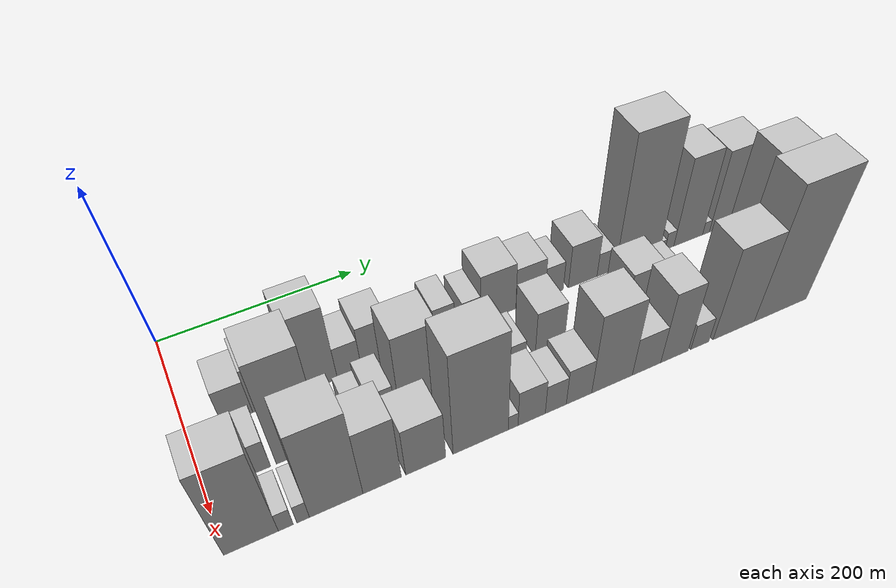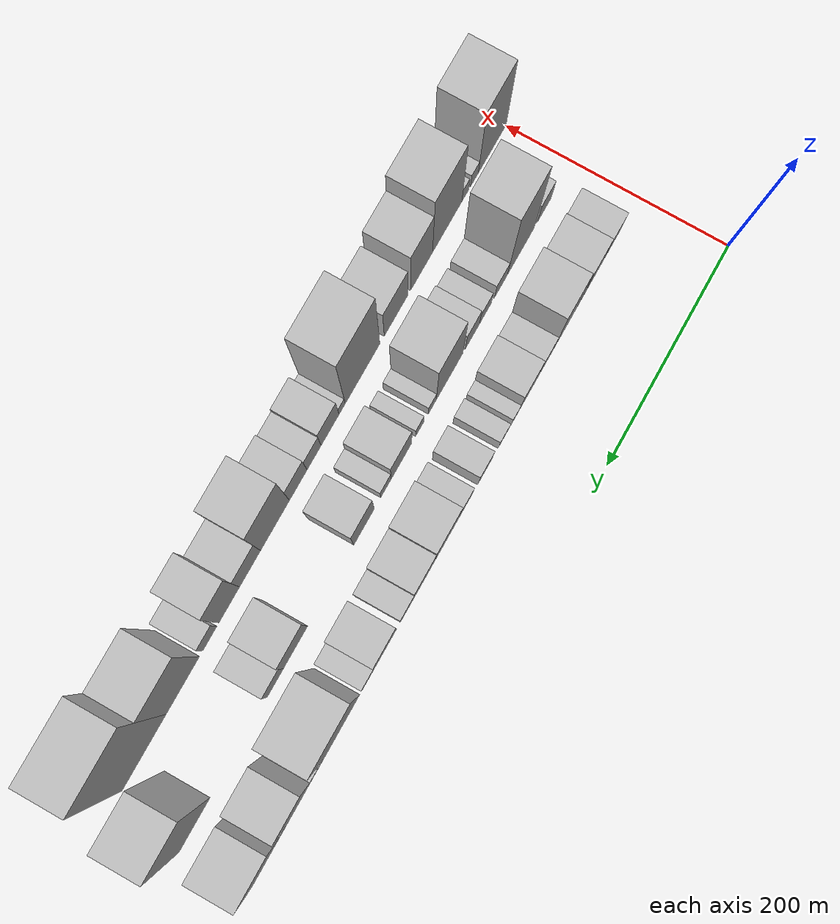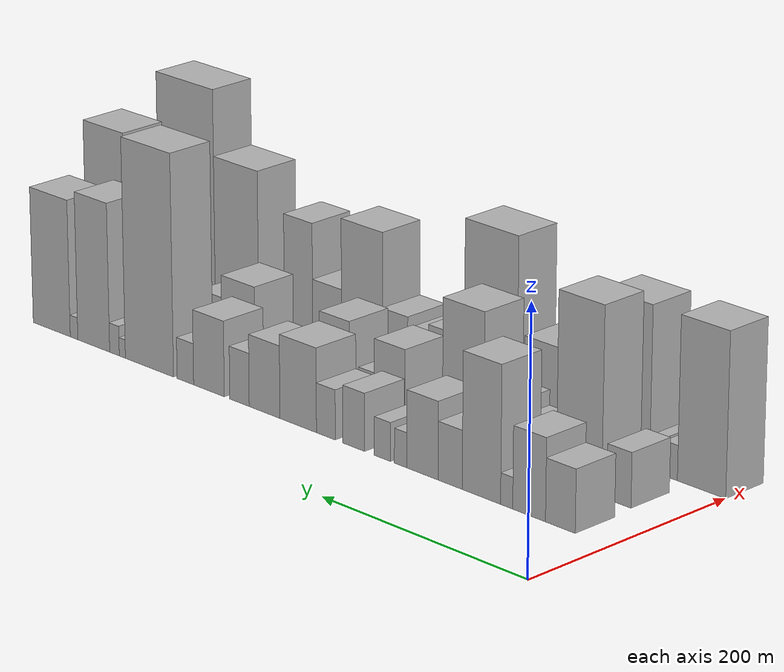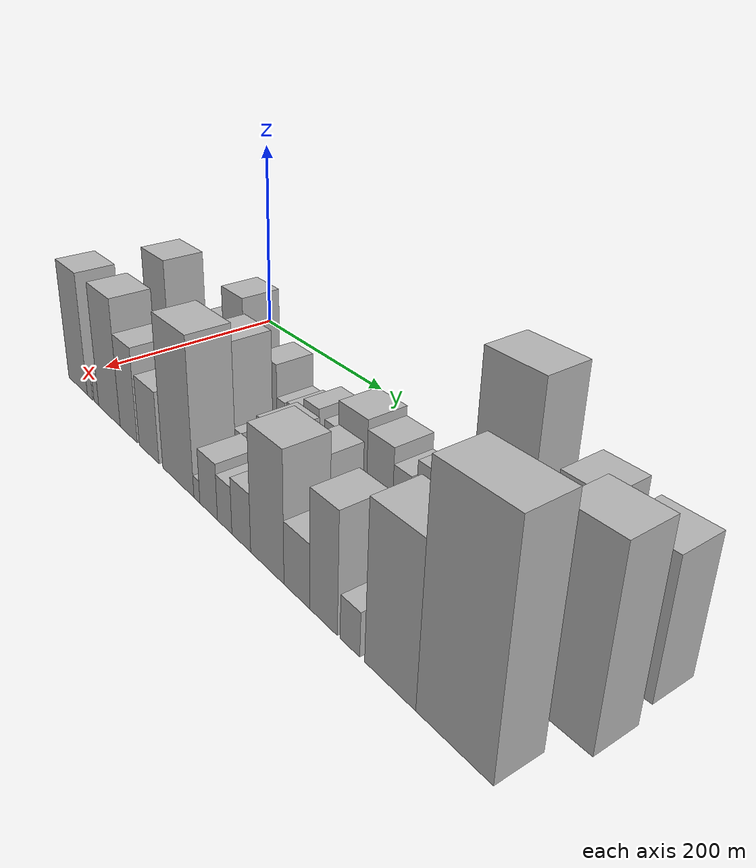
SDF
<sdf version="1.6">
 <world name="default">
  <model name="building_20">
   <static>1</static>
   <pose>100.0000 45.9311 0 0.000000 0.000000 0.000000</pose>
   <link name="link">
    <pose>0 0 24.00 0 0 0</pose>
    <collision name="collision"><geometry><box><size>40.0000 28.2582 48.0000</size></box></geometry></collision>
    <visual name="visual">
     <cast_shadows>0</cast_shadows>
     <geometry><box><size>40.0000 28.2582 48.0000</size></box></geometry>
     <material>
      <script>
       <uri>model://HANNAS_wall/materials/scripts</uri>
       <uri>model://HANNAS_wall/materials/textures</uri>
       <name>vrc/HANNAS_wall</name>
      </script>
     </material>
    </visual>
   </link>
  </model>
  <model name="building_21">
   <static>1</static>
   <pose>100.0000 75.8250 0 0.000000 0.000000 0.000000</pose>
   <link name="link">
    <pose>0 0 31.50 0 0 0</pose>
    <collision name="collision"><geometry><box><size>40.0000 31.5296 63.0000</size></box></geometry></collision>
    <visual name="visual">
     <cast_shadows>0</cast_shadows>
     <geometry><box><size>40.0000 31.5296 63.0000</size></box></geometry>
     <material>
      <script>
       <uri>model://HANNAS_wall/materials/scripts</uri>
       <uri>model://HANNAS_wall/materials/textures</uri>
       <name>vrc/HANNAS_wall</name>
      </script>
     </material>
    </visual>
   </link>
  </model>
  <model name="building_22">
   <static>1</static>
   <pose>100.0000 97.4669 0 0.000000 0.000000 0.000000</pose>
   <link name="link">
    <pose>0 0 12.00 0 0 0</pose>
    <collision name="collision"><geometry><box><size>40.0000 11.7541 24.0000</size></box></geometry></collision>
    <visual name="visual">
     <cast_shadows>0</cast_shadows>
     <geometry><box><size>40.0000 11.7541 24.0000</size></box></geometry>
     <material>
      <script>
       <uri>model://HANNAS_wall/materials/scripts</uri>
       <uri>model://HANNAS_wall/materials/textures</uri>
       <name>vrc/HANNAS_wall</name>
      </script>
     </material>
    </visual>
   </link>
  </model>
  <model name="building_23">
   <static>1</static>
   <pose>100.0000 122.1603 0 0.000000 0.000000 0.000000</pose>
   <link name="link">
    <pose>0 0 52.50 0 0 0</pose>
    <collision name="collision"><geometry><box><size>40.0000 37.6327 105.0000</size></box></geometry></collision>
    <visual name="visual">
     <cast_shadows>0</cast_shadows>
     <geometry><box><size>40.0000 37.6327 105.0000</size></box></geometry>
     <material>
      <script>
       <uri>model://HANNAS_wall/materials/scripts</uri>
       <uri>model://HANNAS_wall/materials/textures</uri>
       <name>vrc/HANNAS_wall</name>
      </script>
     </material>
    </visual>
   </link>
  </model>
  <model name="building_24">
   <static>1</static>
   <pose>100.0000 152.9874 0 0.000000 0.000000 0.000000</pose>
   <link name="link">
    <pose>0 0 22.50 0 0 0</pose>
    <collision name="collision"><geometry><box><size>40.0000 24.0217 45.0000</size></box></geometry></collision>
    <visual name="visual">
     <cast_shadows>0</cast_shadows>
     <geometry><box><size>40.0000 24.0217 45.0000</size></box></geometry>
     <material>
      <script>
       <uri>model://HANNAS_wall/materials/scripts</uri>
       <uri>model://HANNAS_wall/materials/textures</uri>
       <name>vrc/HANNAS_wall</name>
      </script>
     </material>
    </visual>
   </link>
  </model>
  <model name="building_25">
   <static>1</static>
   <pose>100.0000 180.6803 0 0.000000 0.000000 0.000000</pose>
   <link name="link">
    <pose>0 0 30.00 0 0 0</pose>
    <collision name="collision"><geometry><box><size>40.0000 31.3639 60.0000</size></box></geometry></collision>
    <visual name="visual">
     <cast_shadows>0</cast_shadows>
     <geometry><box><size>40.0000 31.3639 60.0000</size></box></geometry>
     <material>
      <script>
       <uri>model://HANNAS_wall/materials/scripts</uri>
       <uri>model://HANNAS_wall/materials/textures</uri>
       <name>vrc/HANNAS_wall</name>
      </script>
     </material>
    </visual>
   </link>
  </model>
  <model name="building_26">
   <static>1</static>
   <pose>100.0000 202.7305 0 0.000000 0.000000 0.000000</pose>
   <link name="link">
    <pose>0 0 13.50 0 0 0</pose>
    <collision name="collision"><geometry><box><size>40.0000 12.7365 27.0000</size></box></geometry></collision>
    <visual name="visual">
     <cast_shadows>0</cast_shadows>
     <geometry><box><size>40.0000 12.7365 27.0000</size></box></geometry>
     <material>
      <script>
       <uri>model://HANNAS_wall/materials/scripts</uri>
       <uri>model://HANNAS_wall/materials/textures</uri>
       <name>vrc/HANNAS_wall</name>
      </script>
     </material>
    </visual>
   </link>
  </model>
  <model name="building_27">
   <static>1</static>
   <pose>100.0000 221.3108 0 0.000000 0.000000 0.000000</pose>
   <link name="link">
    <pose>0 0 15.00 0 0 0</pose>
    <collision name="collision"><geometry><box><size>40.0000 16.4240 30.0000</size></box></geometry></collision>
    <visual name="visual">
     <cast_shadows>0</cast_shadows>
     <geometry><box><size>40.0000 16.4240 30.0000</size></box></geometry>
     <material>
      <script>
       <uri>model://HANNAS_wall/materials/scripts</uri>
       <uri>model://HANNAS_wall/materials/textures</uri>
       <name>vrc/HANNAS_wall</name>
      </script>
     </material>
    </visual>
   </link>
  </model>
  <model name="building_28">
   <static>1</static>
   <pose>100.0000 250.7945 0 0.000000 0.000000 0.000000</pose>
   <link name="link">
    <pose>0 0 22.50 0 0 0</pose>
    <collision name="collision"><geometry><box><size>40.0000 22.5436 45.0000</size></box></geometry></collision>
    <visual name="visual">
     <cast_shadows>0</cast_shadows>
     <geometry><box><size>40.0000 22.5436 45.0000</size></box></geometry>
     <material>
      <script>
       <uri>model://HANNAS_wall/materials/scripts</uri>
       <uri>model://HANNAS_wall/materials/textures</uri>
       <name>vrc/HANNAS_wall</name>
      </script>
     </material>
    </visual>
   </link>
  </model>
  <model name="building_29">
   <static>1</static>
   <pose>100.0000 279.9349 0 0.000000 0.000000 0.000000</pose>
   <link name="link">
    <pose>0 0 19.50 0 0 0</pose>
    <collision name="collision"><geometry><box><size>40.0000 19.7372 39.0000</size></box></geometry></collision>
    <visual name="visual">
     <cast_shadows>0</cast_shadows>
     <geometry><box><size>40.0000 19.7372 39.0000</size></box></geometry>
     <material>
      <script>
       <uri>model://HANNAS_wall/materials/scripts</uri>
       <uri>model://HANNAS_wall/materials/textures</uri>
       <name>vrc/HANNAS_wall</name>
      </script>
     </material>
    </visual>
   </link>
  </model>
  <model name="building_30">
   <static>1</static>
   <pose>100.0000 309.1752 0 0.000000 0.000000 0.000000</pose>
   <link name="link">
    <pose>0 0 33.00 0 0 0</pose>
    <collision name="collision"><geometry><box><size>40.0000 38.7434 66.0000</size></box></geometry></collision>
    <visual name="visual">
     <cast_shadows>0</cast_shadows>
     <geometry><box><size>40.0000 38.7434 66.0000</size></box></geometry>
     <material>
      <script>
       <uri>model://HANNAS_wall/materials/scripts</uri>
       <uri>model://HANNAS_wall/materials/textures</uri>
       <name>vrc/HANNAS_wall</name>
      </script>
     </material>
    </visual>
   </link>
  </model>
  <model name="building_31">
   <static>1</static>
   <pose>100.0000 345.0611 0 0.000000 0.000000 0.000000</pose>
   <link name="link">
    <pose>0 0 28.50 0 0 0</pose>
    <collision name="collision"><geometry><box><size>40.0000 33.0284 57.0000</size></box></geometry></collision>
    <visual name="visual">
     <cast_shadows>0</cast_shadows>
     <geometry><box><size>40.0000 33.0284 57.0000</size></box></geometry>
     <material>
      <script>
       <uri>model://HANNAS_wall/materials/scripts</uri>
       <uri>model://HANNAS_wall/materials/textures</uri>
       <name>vrc/HANNAS_wall</name>
      </script>
     </material>
    </visual>
   </link>
  </model>
  <model name="building_32">
   <static>1</static>
   <pose>100.0000 372.1604 0 0.000000 0.000000 0.000000</pose>
   <link name="link">
    <pose>0 0 21.00 0 0 0</pose>
    <collision name="collision"><geometry><box><size>40.0000 21.1702 42.0000</size></box></geometry></collision>
    <visual name="visual">
     <cast_shadows>0</cast_shadows>
     <geometry><box><size>40.0000 21.1702 42.0000</size></box></geometry>
     <material>
      <script>
       <uri>model://HANNAS_wall/materials/scripts</uri>
       <uri>model://HANNAS_wall/materials/textures</uri>
       <name>vrc/HANNAS_wall</name>
      </script>
     </material>
    </visual>
   </link>
  </model>
  <model name="building_33">
   <static>1</static>
   <pose>100.0000 405.6801 0 0.000000 0.000000 0.000000</pose>
   <link name="link">
    <pose>0 0 30.00 0 0 0</pose>
    <collision name="collision"><geometry><box><size>40.0000 33.8693 60.0000</size></box></geometry></collision>
    <visual name="visual">
     <cast_shadows>0</cast_shadows>
     <geometry><box><size>40.0000 33.8693 60.0000</size></box></geometry>
     <material>
      <script>
       <uri>model://HANNAS_wall/materials/scripts</uri>
       <uri>model://HANNAS_wall/materials/textures</uri>
       <name>vrc/HANNAS_wall</name>
      </script>
     </material>
    </visual>
   </link>
  </model>
  <model name="building_34">
   <static>1</static>
   <pose>100.0000 431.8306 0 0.000000 0.000000 0.000000</pose>
   <link name="link">
    <pose>0 0 16.50 0 0 0</pose>
    <collision name="collision"><geometry><box><size>40.0000 18.4317 33.0000</size></box></geometry></collision>
    <visual name="visual">
     <cast_shadows>0</cast_shadows>
     <geometry><box><size>40.0000 18.4317 33.0000</size></box></geometry>
     <material>
      <script>
       <uri>model://HANNAS_wall/materials/scripts</uri>
       <uri>model://HANNAS_wall/materials/textures</uri>
       <name>vrc/HANNAS_wall</name>
      </script>
     </material>
    </visual>
   </link>
  </model>
  <model name="building_35">
   <static>1</static>
   <pose>100.0000 472.3444 0 0.000000 0.000000 0.000000</pose>
   <link name="link">
    <pose>0 0 88.50 0 0 0</pose>
    <collision name="collision"><geometry><box><size>40.0000 54.5960 177.0000</size></box></geometry></collision>
    <visual name="visual">
     <cast_shadows>0</cast_shadows>
     <geometry><box><size>40.0000 54.5960 177.0000</size></box></geometry>
     <material>
      <script>
       <uri>model://HANNAS_wall/materials/scripts</uri>
       <uri>model://HANNAS_wall/materials/textures</uri>
       <name>vrc/HANNAS_wall</name>
      </script>
     </material>
    </visual>
   </link>
  </model>
  <model name="building_36">
   <static>1</static>
   <pose>100.0000 503.1276 0 0.000000 0.000000 0.000000</pose>
   <link name="link">
    <pose>0 0 7.50 0 0 0</pose>
    <collision name="collision"><geometry><box><size>40.0000 6.9704 15.0000</size></box></geometry></collision>
    <visual name="visual">
     <cast_shadows>0</cast_shadows>
     <geometry><box><size>40.0000 6.9704 15.0000</size></box></geometry>
     <material>
      <script>
       <uri>model://HANNAS_wall/materials/scripts</uri>
       <uri>model://HANNAS_wall/materials/textures</uri>
       <name>vrc/HANNAS_wall</name>
      </script>
     </material>
    </visual>
   </link>
  </model>
  <model name="building_37">
   <static>1</static>
   <pose>100.0000 512.1319 0 0.000000 0.000000 0.000000</pose>
   <link name="link">
    <pose>0 0 12.00 0 0 0</pose>
    <collision name="collision"><geometry><box><size>40.0000 11.0382 24.0000</size></box></geometry></collision>
    <visual name="visual">
     <cast_shadows>0</cast_shadows>
     <geometry><box><size>40.0000 11.0382 24.0000</size></box></geometry>
     <material>
      <script>
       <uri>model://HANNAS_wall/materials/scripts</uri>
       <uri>model://HANNAS_wall/materials/textures</uri>
       <name>vrc/HANNAS_wall</name>
      </script>
     </material>
    </visual>
   </link>
  </model>
  <model name="building_38">
   <static>1</static>
   <pose>100.0000 536.1729 0 0.000000 0.000000 0.000000</pose>
   <link name="link">
    <pose>0 0 60.00 0 0 0</pose>
    <collision name="collision"><geometry><box><size>40.0000 37.0437 120.0000</size></box></geometry></collision>
    <visual name="visual">
     <cast_shadows>0</cast_shadows>
     <geometry><box><size>40.0000 37.0437 120.0000</size></box></geometry>
     <material>
      <script>
       <uri>model://HANNAS_wall/materials/scripts</uri>
       <uri>model://HANNAS_wall/materials/textures</uri>
       <name>vrc/HANNAS_wall</name>
      </script>
     </material>
    </visual>
   </link>
  </model>
  <model name="building_39">
   <static>1</static>
   <pose>100.0000 559.1173 0 0.000000 0.000000 0.000000</pose>
   <link name="link">
    <pose>0 0 9.00 0 0 0</pose>
    <collision name="collision"><geometry><box><size>40.0000 8.8453 18.0000</size></box></geometry></collision>
    <visual name="visual">
     <cast_shadows>0</cast_shadows>
     <geometry><box><size>40.0000 8.8453 18.0000</size></box></geometry>
     <material>
      <script>
       <uri>model://HANNAS_wall/materials/scripts</uri>
       <uri>model://HANNAS_wall/materials/textures</uri>
       <name>vrc/HANNAS_wall</name>
      </script>
     </material>
    </visual>
   </link>
  </model>
  <model name="building_40">
   <static>1</static>
   <pose>100.0000 585.4034 0 0.000000 0.000000 0.000000</pose>
   <link name="link">
    <pose>0 0 55.50 0 0 0</pose>
    <collision name="collision"><geometry><box><size>40.0000 43.7269 111.0000</size></box></geometry></collision>
    <visual name="visual">
     <cast_shadows>0</cast_shadows>
     <geometry><box><size>40.0000 43.7269 111.0000</size></box></geometry>
     <material>
      <script>
       <uri>model://HANNAS_wall/materials/scripts</uri>
       <uri>model://HANNAS_wall/materials/textures</uri>
       <name>vrc/HANNAS_wall</name>
      </script>
     </material>
    </visual>
   </link>
  </model>
  <model name="building_58">
   <static>1</static>
   <pose>160.0000 46.2465 0 0.000000 0.000000 0.000000</pose>
   <link name="link">
    <pose>0 0 21.00 0 0 0</pose>
    <collision name="collision"><geometry><box><size>40.0000 22.9643 42.0000</size></box></geometry></collision>
    <visual name="visual">
     <cast_shadows>0</cast_shadows>
     <geometry><box><size>40.0000 22.9643 42.0000</size></box></geometry>
     <material>
      <script>
       <uri>model://HANNAS_wall/materials/scripts</uri>
       <uri>model://HANNAS_wall/materials/textures</uri>
       <name>vrc/HANNAS_wall</name>
      </script>
     </material>
    </visual>
   </link>
  </model>
  <model name="building_59">
   <static>1</static>
   <pose>160.0000 84.6311 0 0.000000 0.000000 0.000000</pose>
   <link name="link">
    <pose>0 0 72.00 0 0 0</pose>
    <collision name="collision"><geometry><box><size>40.0000 43.8050 144.0000</size></box></geometry></collision>
    <visual name="visual">
     <cast_shadows>0</cast_shadows>
     <geometry><box><size>40.0000 43.8050 144.0000</size></box></geometry>
     <material>
      <script>
       <uri>model://HANNAS_wall/materials/scripts</uri>
       <uri>model://HANNAS_wall/materials/textures</uri>
       <name>vrc/HANNAS_wall</name>
      </script>
     </material>
    </visual>
   </link>
  </model>
  <model name="building_60">
   <static>1</static>
   <pose>160.0000 116.9627 0 0.000000 0.000000 0.000000</pose>
   <link name="link">
    <pose>0 0 18.00 0 0 0</pose>
    <collision name="collision"><geometry><box><size>40.0000 20.8580 36.0000</size></box></geometry></collision>
    <visual name="visual">
     <cast_shadows>0</cast_shadows>
     <geometry><box><size>40.0000 20.8580 36.0000</size></box></geometry>
     <material>
      <script>
       <uri>model://HANNAS_wall/materials/scripts</uri>
       <uri>model://HANNAS_wall/materials/textures</uri>
       <name>vrc/HANNAS_wall</name>
      </script>
     </material>
    </visual>
   </link>
  </model>
  <model name="building_61">
   <static>1</static>
   <pose>160.0000 141.9194 0 0.000000 0.000000 0.000000</pose>
   <link name="link">
    <pose>0 0 16.50 0 0 0</pose>
    <collision name="collision"><geometry><box><size>40.0000 19.0554 33.0000</size></box></geometry></collision>
    <visual name="visual">
     <cast_shadows>0</cast_shadows>
     <geometry><box><size>40.0000 19.0554 33.0000</size></box></geometry>
     <material>
      <script>
       <uri>model://HANNAS_wall/materials/scripts</uri>
       <uri>model://HANNAS_wall/materials/textures</uri>
       <name>vrc/HANNAS_wall</name>
      </script>
     </material>
    </visual>
   </link>
  </model>
  <model name="building_62">
   <static>1</static>
   <pose>160.0000 162.7937 0 0.000000 0.000000 0.000000</pose>
   <link name="link">
    <pose>0 0 22.50 0 0 0</pose>
    <collision name="collision"><geometry><box><size>40.0000 22.6934 45.0000</size></box></geometry></collision>
    <visual name="visual">
     <cast_shadows>0</cast_shadows>
     <geometry><box><size>40.0000 22.6934 45.0000</size></box></geometry>
     <material>
      <script>
       <uri>model://HANNAS_wall/materials/scripts</uri>
       <uri>model://HANNAS_wall/materials/textures</uri>
       <name>vrc/HANNAS_wall</name>
      </script>
     </material>
    </visual>
   </link>
  </model>
  <model name="building_63">
   <static>1</static>
   <pose>160.0000 199.1652 0 0.000000 0.000000 0.000000</pose>
   <link name="link">
    <pose>0 0 54.00 0 0 0</pose>
    <collision name="collision"><geometry><box><size>40.0000 42.0496 108.0000</size></box></geometry></collision>
    <visual name="visual">
     <cast_shadows>0</cast_shadows>
     <geometry><box><size>40.0000 42.0496 108.0000</size></box></geometry>
     <material>
      <script>
       <uri>model://HANNAS_wall/materials/scripts</uri>
       <uri>model://HANNAS_wall/materials/textures</uri>
       <name>vrc/HANNAS_wall</name>
      </script>
     </material>
    </visual>
   </link>
  </model>
  <model name="building_64">
   <static>1</static>
   <pose>160.0000 226.4429 0 0.000000 0.000000 0.000000</pose>
   <link name="link">
    <pose>0 0 13.50 0 0 0</pose>
    <collision name="collision"><geometry><box><size>40.0000 12.5059 27.0000</size></box></geometry></collision>
    <visual name="visual">
     <cast_shadows>0</cast_shadows>
     <geometry><box><size>40.0000 12.5059 27.0000</size></box></geometry>
     <material>
      <script>
       <uri>model://HANNAS_wall/materials/scripts</uri>
       <uri>model://HANNAS_wall/materials/textures</uri>
       <name>vrc/HANNAS_wall</name>
      </script>
     </material>
    </visual>
   </link>
  </model>
  <model name="building_65">
   <static>1</static>
   <pose>160.0000 246.2078 0 0.000000 0.000000 0.000000</pose>
   <link name="link">
    <pose>0 0 13.50 0 0 0</pose>
    <collision name="collision"><geometry><box><size>40.0000 13.0239 27.0000</size></box></geometry></collision>
    <visual name="visual">
     <cast_shadows>0</cast_shadows>
     <geometry><box><size>40.0000 13.0239 27.0000</size></box></geometry>
     <material>
      <script>
       <uri>model://HANNAS_wall/materials/scripts</uri>
       <uri>model://HANNAS_wall/materials/textures</uri>
       <name>vrc/HANNAS_wall</name>
      </script>
     </material>
    </visual>
   </link>
  </model>
  <model name="building_66">
   <static>1</static>
   <pose>160.0000 274.7324 0 0.000000 0.000000 0.000000</pose>
   <link name="link">
    <pose>0 0 28.50 0 0 0</pose>
    <collision name="collision"><geometry><box><size>40.0000 32.0252 57.0000</size></box></geometry></collision>
    <visual name="visual">
     <cast_shadows>0</cast_shadows>
     <geometry><box><size>40.0000 32.0252 57.0000</size></box></geometry>
     <material>
      <script>
       <uri>model://HANNAS_wall/materials/scripts</uri>
       <uri>model://HANNAS_wall/materials/textures</uri>
       <name>vrc/HANNAS_wall</name>
      </script>
     </material>
    </visual>
   </link>
  </model>
  <model name="building_67">
   <static>1</static>
   <pose>160.0000 299.0501 0 0.000000 0.000000 0.000000</pose>
   <link name="link">
    <pose>0 0 15.00 0 0 0</pose>
    <collision name="collision"><geometry><box><size>40.0000 16.6102 30.0000</size></box></geometry></collision>
    <visual name="visual">
     <cast_shadows>0</cast_shadows>
     <geometry><box><size>40.0000 16.6102 30.0000</size></box></geometry>
     <material>
      <script>
       <uri>model://HANNAS_wall/materials/scripts</uri>
       <uri>model://HANNAS_wall/materials/textures</uri>
       <name>vrc/HANNAS_wall</name>
      </script>
     </material>
    </visual>
   </link>
  </model>
  <model name="building_68">
   <static>1</static>
   <pose>160.0000 333.2027 0 0.000000 0.000000 0.000000</pose>
   <link name="link">
    <pose>0 0 31.50 0 0 0</pose>
    <collision name="collision"><geometry><box><size>40.0000 31.6950 63.0000</size></box></geometry></collision>
    <visual name="visual">
     <cast_shadows>0</cast_shadows>
     <geometry><box><size>40.0000 31.6950 63.0000</size></box></geometry>
     <material>
      <script>
       <uri>model://HANNAS_wall/materials/scripts</uri>
       <uri>model://HANNAS_wall/materials/textures</uri>
       <name>vrc/HANNAS_wall</name>
      </script>
     </material>
    </visual>
   </link>
  </model>
  <model name="building_69">
   <static>1</static>
   <pose>160.0000 438.1638 0 0.000000 0.000000 0.000000</pose>
   <link name="link">
    <pose>0 0 31.50 0 0 0</pose>
    <collision name="collision"><geometry><box><size>40.0000 36.7424 63.0000</size></box></geometry></collision>
    <visual name="visual">
     <cast_shadows>0</cast_shadows>
     <geometry><box><size>40.0000 36.7424 63.0000</size></box></geometry>
     <material>
      <script>
       <uri>model://HANNAS_wall/materials/scripts</uri>
       <uri>model://HANNAS_wall/materials/textures</uri>
       <name>vrc/HANNAS_wall</name>
      </script>
     </material>
    </visual>
   </link>
  </model>
  <model name="building_70">
   <static>1</static>
   <pose>160.0000 468.7781 0 0.000000 0.000000 0.000000</pose>
   <link name="link">
    <pose>0 0 22.50 0 0 0</pose>
    <collision name="collision"><geometry><box><size>40.0000 24.4863 45.0000</size></box></geometry></collision>
    <visual name="visual">
     <cast_shadows>0</cast_shadows>
     <geometry><box><size>40.0000 24.4863 45.0000</size></box></geometry>
     <material>
      <script>
       <uri>model://HANNAS_wall/materials/scripts</uri>
       <uri>model://HANNAS_wall/materials/textures</uri>
       <name>vrc/HANNAS_wall</name>
      </script>
     </material>
    </visual>
   </link>
  </model>
  <model name="building_71">
   <static>1</static>
   <pose>160.0000 589.4472 0 0.000000 0.000000 0.000000</pose>
   <link name="link">
    <pose>0 0 75.00 0 0 0</pose>
    <collision name="collision"><geometry><box><size>40.0000 46.2839 150.0000</size></box></geometry></collision>
    <visual name="visual">
     <cast_shadows>0</cast_shadows>
     <geometry><box><size>40.0000 46.2839 150.0000</size></box></geometry>
     <material>
      <script>
       <uri>model://HANNAS_wall/materials/scripts</uri>
       <uri>model://HANNAS_wall/materials/textures</uri>
       <name>vrc/HANNAS_wall</name>
      </script>
     </material>
    </visual>
   </link>
  </model>
  <model name="building_88">
   <static>1</static>
   <pose>220.0000 22.4431 0 0.000000 0.000000 0.000000</pose>
   <link name="link">
    <pose>0 0 63.00 0 0 0</pose>
    <collision name="collision"><geometry><box><size>40.0000 45.5857 126.0000</size></box></geometry></collision>
    <visual name="visual">
     <cast_shadows>0</cast_shadows>
     <geometry><box><size>40.0000 45.5857 126.0000</size></box></geometry>
     <material>
      <script>
       <uri>model://HANNAS_wall/materials/scripts</uri>
       <uri>model://HANNAS_wall/materials/textures</uri>
       <name>vrc/HANNAS_wall</name>
      </script>
     </material>
    </visual>
   </link>
  </model>
  <model name="building_89">
   <static>1</static>
   <pose>220.0000 51.6182 0 0.000000 0.000000 0.000000</pose>
   <link name="link">
    <pose>0 0 13.50 0 0 0</pose>
    <collision name="collision"><geometry><box><size>40.0000 12.7645 27.0000</size></box></geometry></collision>
    <visual name="visual">
     <cast_shadows>0</cast_shadows>
     <geometry><box><size>40.0000 12.7645 27.0000</size></box></geometry>
     <material>
      <script>
       <uri>model://HANNAS_wall/materials/scripts</uri>
       <uri>model://HANNAS_wall/materials/textures</uri>
       <name>vrc/HANNAS_wall</name>
      </script>
     </material>
    </visual>
   </link>
  </model>
  <model name="building_90">
   <static>1</static>
   <pose>220.0000 66.4389 0 0.000000 0.000000 0.000000</pose>
   <link name="link">
    <pose>0 0 13.50 0 0 0</pose>
    <collision name="collision"><geometry><box><size>40.0000 10.8768 27.0000</size></box></geometry></collision>
    <visual name="visual">
     <cast_shadows>0</cast_shadows>
     <geometry><box><size>40.0000 10.8768 27.0000</size></box></geometry>
     <material>
      <script>
       <uri>model://HANNAS_wall/materials/scripts</uri>
       <uri>model://HANNAS_wall/materials/textures</uri>
       <name>vrc/HANNAS_wall</name>
      </script>
     </material>
    </visual>
   </link>
  </model>
  <model name="building_91">
   <static>1</static>
   <pose>220.0000 95.5271 0 0.000000 0.000000 0.000000</pose>
   <link name="link">
    <pose>0 0 63.00 0 0 0</pose>
    <collision name="collision"><geometry><box><size>40.0000 47.2995 126.0000</size></box></geometry></collision>
    <visual name="visual">
     <cast_shadows>0</cast_shadows>
     <geometry><box><size>40.0000 47.2995 126.0000</size></box></geometry>
     <material>
      <script>
       <uri>model://HANNAS_wall/materials/scripts</uri>
       <uri>model://HANNAS_wall/materials/textures</uri>
       <name>vrc/HANNAS_wall</name>
      </script>
     </material>
    </visual>
   </link>
  </model>
  <model name="building_92">
   <static>1</static>
   <pose>220.0000 136.6772 0 0.000000 0.000000 0.000000</pose>
   <link name="link">
    <pose>0 0 46.50 0 0 0</pose>
    <collision name="collision"><geometry><box><size>40.0000 35.0007 93.0000</size></box></geometry></collision>
    <visual name="visual">
     <cast_shadows>0</cast_shadows>
     <geometry><box><size>40.0000 35.0007 93.0000</size></box></geometry>
     <material>
      <script>
       <uri>model://HANNAS_wall/materials/scripts</uri>
       <uri>model://HANNAS_wall/materials/textures</uri>
       <name>vrc/HANNAS_wall</name>
      </script>
     </material>
    </visual>
   </link>
  </model>
  <model name="building_93">
   <static>1</static>
   <pose>220.0000 177.0465 0 0.000000 0.000000 0.000000</pose>
   <link name="link">
    <pose>0 0 34.50 0 0 0</pose>
    <collision name="collision"><geometry><box><size>40.0000 37.7380 69.0000</size></box></geometry></collision>
    <visual name="visual">
     <cast_shadows>0</cast_shadows>
     <geometry><box><size>40.0000 37.7380 69.0000</size></box></geometry>
     <material>
      <script>
       <uri>model://HANNAS_wall/materials/scripts</uri>
       <uri>model://HANNAS_wall/materials/textures</uri>
       <name>vrc/HANNAS_wall</name>
      </script>
     </material>
    </visual>
   </link>
  </model>
  <model name="building_94">
   <static>1</static>
   <pose>220.0000 230.0142 0 0.000000 0.000000 0.000000</pose>
   <link name="link">
    <pose>0 0 72.00 0 0 0</pose>
    <collision name="collision"><geometry><box><size>40.0000 54.1974 144.0000</size></box></geometry></collision>
    <visual name="visual">
     <cast_shadows>0</cast_shadows>
     <geometry><box><size>40.0000 54.1974 144.0000</size></box></geometry>
     <material>
      <script>
       <uri>model://HANNAS_wall/materials/scripts</uri>
       <uri>model://HANNAS_wall/materials/textures</uri>
       <name>vrc/HANNAS_wall</name>
      </script>
     </material>
    </visual>
   </link>
  </model>
  <model name="building_95">
   <static>1</static>
   <pose>220.0000 262.0165 0 0.000000 0.000000 0.000000</pose>
   <link name="link">
    <pose>0 0 10.50 0 0 0</pose>
    <collision name="collision"><geometry><box><size>40.0000 9.8073 21.0000</size></box></geometry></collision>
    <visual name="visual">
     <cast_shadows>0</cast_shadows>
     <geometry><box><size>40.0000 9.8073 21.0000</size></box></geometry>
     <material>
      <script>
       <uri>model://HANNAS_wall/materials/scripts</uri>
       <uri>model://HANNAS_wall/materials/textures</uri>
       <name>vrc/HANNAS_wall</name>
      </script>
     </material>
    </visual>
   </link>
  </model>
  <model name="building_96">
   <static>1</static>
   <pose>220.0000 280.8100 0 0.000000 0.000000 0.000000</pose>
   <link name="link">
    <pose>0 0 25.50 0 0 0</pose>
    <collision name="collision"><geometry><box><size>40.0000 27.7795 51.0000</size></box></geometry></collision>
    <visual name="visual">
     <cast_shadows>0</cast_shadows>
     <geometry><box><size>40.0000 27.7795 51.0000</size></box></geometry>
     <material>
      <script>
       <uri>model://HANNAS_wall/materials/scripts</uri>
       <uri>model://HANNAS_wall/materials/textures</uri>
       <name>vrc/HANNAS_wall</name>
      </script>
     </material>
    </visual>
   </link>
  </model>
  <model name="building_97">
   <static>1</static>
   <pose>220.0000 305.5985 0 0.000000 0.000000 0.000000</pose>
   <link name="link">
    <pose>0 0 21.00 0 0 0</pose>
    <collision name="collision"><geometry><box><size>40.0000 21.7974 42.0000</size></box></geometry></collision>
    <visual name="visual">
     <cast_shadows>0</cast_shadows>
     <geometry><box><size>40.0000 21.7974 42.0000</size></box></geometry>
     <material>
      <script>
       <uri>model://HANNAS_wall/materials/scripts</uri>
       <uri>model://HANNAS_wall/materials/textures</uri>
       <name>vrc/HANNAS_wall</name>
      </script>
     </material>
    </visual>
   </link>
  </model>
  <model name="building_98">
   <static>1</static>
   <pose>220.0000 329.9692 0 0.000000 0.000000 0.000000</pose>
   <link name="link">
    <pose>0 0 25.50 0 0 0</pose>
    <collision name="collision"><geometry><box><size>40.0000 26.9441 51.0000</size></box></geometry></collision>
    <visual name="visual">
     <cast_shadows>0</cast_shadows>
     <geometry><box><size>40.0000 26.9441 51.0000</size></box></geometry>
     <material>
      <script>
       <uri>model://HANNAS_wall/materials/scripts</uri>
       <uri>model://HANNAS_wall/materials/textures</uri>
       <name>vrc/HANNAS_wall</name>
      </script>
     </material>
    </visual>
   </link>
  </model>
  <model name="building_99">
   <static>1</static>
   <pose>220.0000 365.5794 0 0.000000 0.000000 0.000000</pose>
   <link name="link">
    <pose>0 0 55.50 0 0 0</pose>
    <collision name="collision"><geometry><box><size>40.0000 44.2764 111.0000</size></box></geometry></collision>
    <visual name="visual">
     <cast_shadows>0</cast_shadows>
     <geometry><box><size>40.0000 44.2764 111.0000</size></box></geometry>
     <material>
      <script>
       <uri>model://HANNAS_wall/materials/scripts</uri>
       <uri>model://HANNAS_wall/materials/textures</uri>
       <name>vrc/HANNAS_wall</name>
      </script>
     </material>
    </visual>
   </link>
  </model>
  <model name="building_100">
   <static>1</static>
   <pose>220.0000 403.5796 0 0.000000 0.000000 0.000000</pose>
   <link name="link">
    <pose>0 0 27.00 0 0 0</pose>
    <collision name="collision"><geometry><box><size>40.0000 31.7239 54.0000</size></box></geometry></collision>
    <visual name="visual">
     <cast_shadows>0</cast_shadows>
     <geometry><box><size>40.0000 31.7239 54.0000</size></box></geometry>
     <material>
      <script>
       <uri>model://HANNAS_wall/materials/scripts</uri>
       <uri>model://HANNAS_wall/materials/textures</uri>
       <name>vrc/HANNAS_wall</name>
      </script>
     </material>
    </visual>
   </link>
  </model>
  <model name="building_101">
   <static>1</static>
   <pose>220.0000 435.1338 0 0.000000 0.000000 0.000000</pose>
   <link name="link">
    <pose>0 0 49.50 0 0 0</pose>
    <collision name="collision"><geometry><box><size>40.0000 31.3846 99.0000</size></box></geometry></collision>
    <visual name="visual">
     <cast_shadows>0</cast_shadows>
     <geometry><box><size>40.0000 31.3846 99.0000</size></box></geometry>
     <material>
      <script>
       <uri>model://HANNAS_wall/materials/scripts</uri>
       <uri>model://HANNAS_wall/materials/textures</uri>
       <name>vrc/HANNAS_wall</name>
      </script>
     </material>
    </visual>
   </link>
  </model>
  <model name="building_102">
   <static>1</static>
   <pose>220.0000 464.3476 0 0.000000 0.000000 0.000000</pose>
   <link name="link">
    <pose>0 0 18.00 0 0 0</pose>
    <collision name="collision"><geometry><box><size>40.0000 21.0430 36.0000</size></box></geometry></collision>
    <visual name="visual">
     <cast_shadows>0</cast_shadows>
     <geometry><box><size>40.0000 21.0430 36.0000</size></box></geometry>
     <material>
      <script>
       <uri>model://HANNAS_wall/materials/scripts</uri>
       <uri>model://HANNAS_wall/materials/textures</uri>
       <name>vrc/HANNAS_wall</name>
      </script>
     </material>
    </visual>
   </link>
  </model>
  <model name="building_103">
   <static>1</static>
   <pose>220.0000 504.6382 0 0.000000 0.000000 0.000000</pose>
   <link name="link">
    <pose>0 0 63.00 0 0 0</pose>
    <collision name="collision"><geometry><box><size>40.0000 49.5382 126.0000</size></box></geometry></collision>
    <visual name="visual">
     <cast_shadows>0</cast_shadows>
     <geometry><box><size>40.0000 49.5382 126.0000</size></box></geometry>
     <material>
      <script>
       <uri>model://HANNAS_wall/materials/scripts</uri>
       <uri>model://HANNAS_wall/materials/textures</uri>
       <name>vrc/HANNAS_wall</name>
      </script>
     </material>
    </visual>
   </link>
  </model>
  <model name="building_104">
   <static>1</static>
   <pose>220.0000 561.9141 0 0.000000 0.000000 0.000000</pose>
   <link name="link">
    <pose>0 0 90.00 0 0 0</pose>
    <collision name="collision"><geometry><box><size>40.0000 65.0137 180.0000</size></box></geometry></collision>
    <visual name="visual">
     <cast_shadows>0</cast_shadows>
     <geometry><box><size>40.0000 65.0137 180.0000</size></box></geometry>
     <material>
      <script>
       <uri>model://HANNAS_wall/materials/scripts</uri>
       <uri>model://HANNAS_wall/materials/textures</uri>
       <name>vrc/HANNAS_wall</name>
      </script>
     </material>
    </visual>
   </link>
  </model>
 </world>
</sdf>
